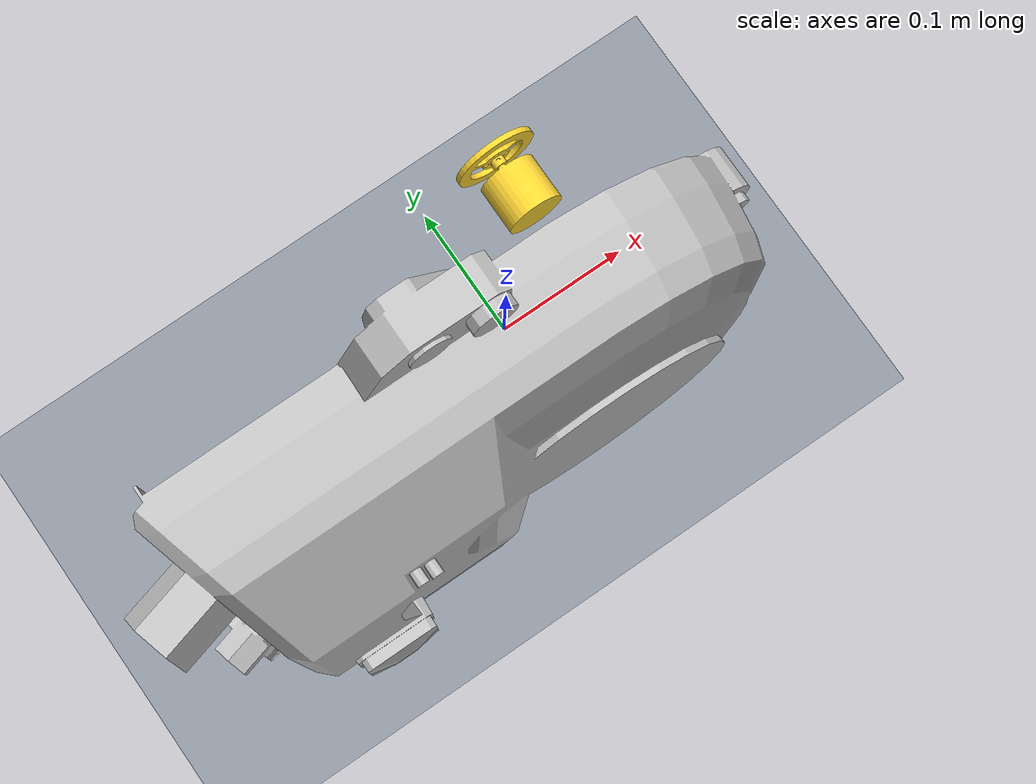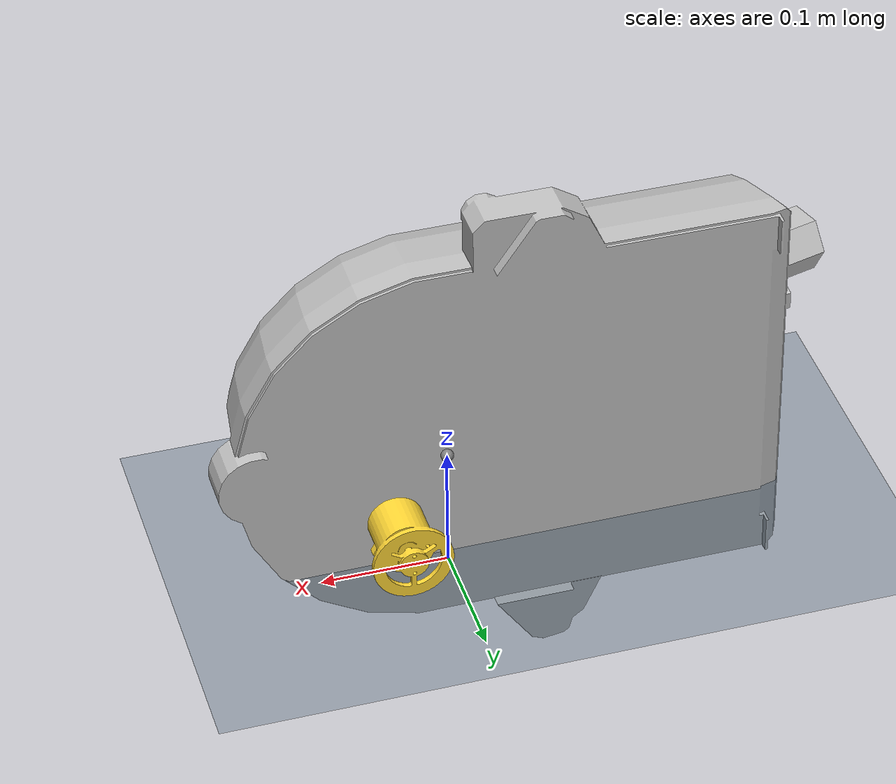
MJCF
<mujoco model="triangle">
  <default>
    <default class="robot">
      <default class="motor">
        <joint />
        <motor />
      </default>
      <default class="visual">
        <geom material="visualgeom" contype="0" conaffinity="0" group="2" />
      </default>
      <default class="collision">
        <geom material="collision_material" condim="3" contype="0" conaffinity="1" priority="1" group="1" solref="0.005 1" friction="1 0.01 0.01" />
        <equality solimp="0.99 0.999 1e-05" solref="0.005 1" />
      </default>
    </default>
  </default>

  <compiler angle="radian" />

  <asset>
    <texture name="grid" type="2d" builtin="checker" width="128" height="128" rgb1=".1 .2 .3" rgb2=".2 .3 .4"/>
    <material name="grid" texture="grid" texrepeat="1 1" texuniform="true" reflectance=".2"/>
    <material name="gray_material" rgba="0.75294 0.75294 0.75294 1" />
    <material name="default_material" rgba="0.7 0.7 0.7 1" />
    <material name="collision_material" rgba="1.0 0.28 0.1 0.9" />
    <material name="reaction_wheel" rgba="1.0 0.84 0.2 1" />
    <mesh name="base_link.STL" file="meshes/base_link.STL" />
    <mesh name="reaction_wheel.STL" file="meshes/reaction_wheel.STL" />
  </asset>

  <worldbody>

  <light diffuse=".5 .5 .5" pos="0 0 10" dir="0 0 -1"/>
  <geom type="plane" size="2 2 0.1" material="grid"/>

    <body name="base_link" pos="0 0 0.1" quat="1 0 0 0" childclass="robot">
      <freejoint name="floating_base" />
      <geom name="base_link_collision" pos="0 0 0" quat="1.0 0.0 0.0 0.0" type="mesh" mesh="base_link.STL" class="collision" material="gray_material" />
      <geom name="base_link_visual" pos="0 0 0" quat="1.0 0.0 0.0 0.0" material="gray_material" type="mesh" mesh="base_link.STL" class="visual" />
        <body name="reaction_wheel" pos="0 0 0" quat="0.7071054825112363 -0.7071080798594735 0.0 0.0">          <joint name="reaction_wheel_joint" type="hinge" pos="0 0 0" class="motor" damping="0.05" range="-1.0472 1.0472" axis="0 0 1" />
          <inertial pos="0.051515 0.019631 0.060459" quat="1.0 0.0 0.0 0.0" mass="0.058143" diaginertia="1.3156e-05 1.2981e-05 1.5356e-05" />
          <geom name="reaction_wheel_collision" pos="0 0 0" quat="1.0 0.0 0.0 0.0" type="mesh" mesh="reaction_wheel.STL" class="collision" material="reaction_wheel" />
          <geom name="reaction_wheel_visual" pos="0 0 0" quat="1.0 0.0 0.0 0.0" material="reaction_wheel" type="mesh" mesh="reaction_wheel.STL" class="visual" />
       </body>
      <site name="base_link_site" pos="0 0 0" quat="1 0 0 0" />
      <camera name="front_camera" mode="track" fovy="90.0" quat="4.329780281177467e-17 4.329780281177466e-17 0.7071067811865475 0.7071067811865476" pos="0.0 2.0 0.5" />
      <camera name="side_camera" mode="track" fovy="90.0" quat="-0.5 -0.4999999999999999 0.5 0.5000000000000001" pos="-2.0 0.0 0.5" />

    </body>
  </worldbody>

  <actuator>
    <motor name="reaction_wheel_joint_ctrl" joint="reaction_wheel_joint" class="motor" />
  </actuator>

  <contact>
    <exclude body1="base_link" body2="reaction_wheel" />
  </contact>

  <sensor>
    <framepos name="base_link_site_pos" objtype="site" objname="base_link_site" />
    <framequat name="base_link_site_quat" objtype="site" objname="base_link_site" />
    <framelinvel name="base_link_site_linvel" objtype="site" objname="base_link_site" />
    <frameangvel name="base_link_site_angvel" objtype="site" objname="base_link_site" />
    <velocimeter name="base_link_site_vel" site="base_link_site" />
  </sensor>
</mujoco>

<!-- Changed Lines: -->
